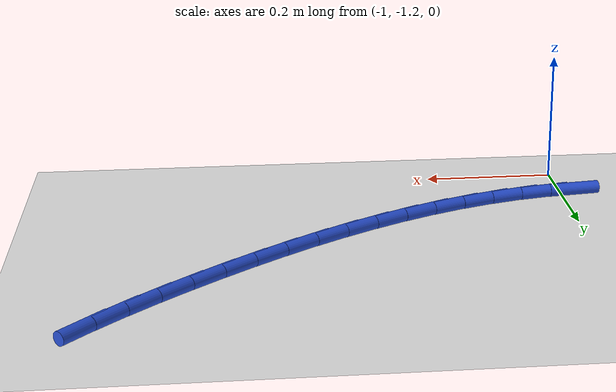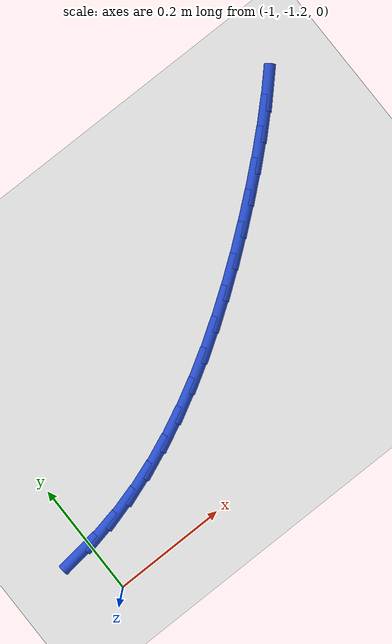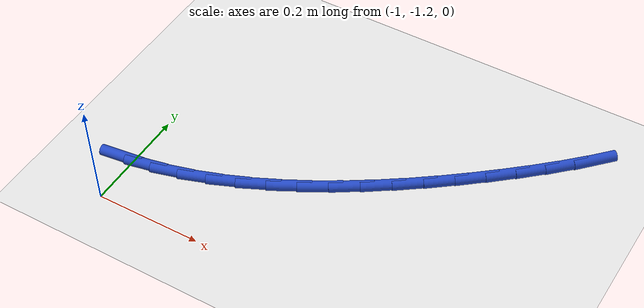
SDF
<sdf version="1.6">
 <world name="default">
  <model name="ground_plane">
   <static>1</static>
   <link name="link">
    <collision name="collision">
     <geometry><plane><normal>0 0 1</normal><size>100 100</size></plane></geometry>
     <surface><friction><ode><mu>100</mu><mu2>50</mu2></ode></friction></surface>
    </collision>
    <visual name="visual">
     <cast_shadows>0</cast_shadows>
     <geometry><plane><normal>0 0 1</normal><size>100 100</size></plane></geometry>
     <material>
      <script><uri>file://media/materials/scripts/gazebo.material</uri><name>Gazebo/WhiteGlow</name></script>
     </material>
    </visual>
   </link>
  </model>
  <model name="line">
   <link name="link_99">
    <pose>-1.0193923580620052 -1.1120422247886856 0.01 0 1.57 0.12185192751938952</pose>
    <collision name="collision">
     <geometry><cylinder><radius>0.01</radius><length>0.08</length></cylinder></geometry>
    </collision>
    <visual name="visual">
     <material>
      <script><name>Gazebo/Blue</name><uri>file://media/materials/scripts/gazebo.material</uri></script>
     </material>
     <geometry><cylinder><radius>0.01</radius><length>0.08</length></cylinder></geometry>
    </visual>
   </link>
   <link name="link_100">
    <pose>-0.9702314001675271 -1.1060220421006384 0.01 0 1.57 0.20117231028450341</pose>
    <collision name="collision">
     <geometry><cylinder><radius>0.01</radius><length>0.08</length></cylinder></geometry>
    </collision>
    <visual name="visual">
     <material>
      <script><name>Gazebo/Blue</name><uri>file://media/materials/scripts/gazebo.material</uri></script>
     </material>
     <geometry><cylinder><radius>0.01</radius><length>0.08</length></cylinder></geometry>
    </visual>
   </link>
   <link name="link_101">
    <pose>-0.9211338512082835 -1.0960095392569171 0.01 0 1.57 0.2731175204792611</pose>
    <collision name="collision">
     <geometry><cylinder><radius>0.01</radius><length>0.08</length></cylinder></geometry>
    </collision>
    <visual name="visual">
     <material>
      <script><name>Gazebo/Blue</name><uri>file://media/materials/scripts/gazebo.material</uri></script>
     </material>
     <geometry><cylinder><radius>0.01</radius><length>0.08</length></cylinder></geometry>
    </visual>
   </link>
   <link name="link_102">
    <pose>-0.8721962196817976 -1.082301259488225 0.01 0 1.57 0.3379386375586854</pose>
    <collision name="collision">
     <geometry><cylinder><radius>0.01</radius><length>0.08</length></cylinder></geometry>
    </collision>
    <visual name="visual">
     <material>
      <script><name>Gazebo/Blue</name><uri>file://media/materials/scripts/gazebo.material</uri></script>
     </material>
     <geometry><cylinder><radius>0.01</radius><length>0.08</length></cylinder></geometry>
    </visual>
   </link>
   <link name="link_103">
    <pose>-0.8235150140855939 -1.0651937460252663 0.01 0 1.57 0.3960849572459098</pose>
    <collision name="collision">
     <geometry><cylinder><radius>0.01</radius><length>0.08</length></cylinder></geometry>
    </collision>
    <visual name="visual">
     <material>
      <script><name>Gazebo/Blue</name><uri>file://media/materials/scripts/gazebo.material</uri></script>
     </material>
     <geometry><cylinder><radius>0.01</radius><length>0.08</length></cylinder></geometry>
    </visual>
   </link>
   <link name="link_104">
    <pose>-0.7751867429171959 -1.0449835420987448 0.01 0 1.57 0.44810567930062567</pose>
    <collision name="collision">
     <geometry><cylinder><radius>0.01</radius><length>0.08</length></cylinder></geometry>
    </collision>
    <visual name="visual">
     <material>
      <script><name>Gazebo/Blue</name><uri>file://media/materials/scripts/gazebo.material</uri></script>
     </material>
     <geometry><cylinder><radius>0.01</radius><length>0.08</length></cylinder></geometry>
    </visual>
   </link>
   <link name="link_105">
    <pose>-0.727307914674127 -1.0219671909393635 0.01 0 1.57 0.4945802524023667</pose>
    <collision name="collision">
     <geometry><cylinder><radius>0.01</radius><length>0.08</length></cylinder></geometry>
    </collision>
    <visual name="visual">
     <material>
      <script><name>Gazebo/Blue</name><uri>file://media/materials/scripts/gazebo.material</uri></script>
     </material>
     <geometry><cylinder><radius>0.01</radius><length>0.08</length></cylinder></geometry>
    </visual>
   </link>
   <link name="link_106">
    <pose>-0.6799750378539111 -0.9964412357778261 0.01 0 1.57 0.5360737581979104</pose>
    <collision name="collision">
     <geometry><cylinder><radius>0.01</radius><length>0.08</length></cylinder></geometry>
    </collision>
    <visual name="visual">
     <material>
      <script><name>Gazebo/Blue</name><uri>file://media/materials/scripts/gazebo.material</uri></script>
     </material>
     <geometry><cylinder><radius>0.01</radius><length>0.08</length></cylinder></geometry>
    </visual>
   </link>
   <link name="link_107">
    <pose>-0.633284620954071 -0.9687022198448361 0.01 0 1.57 0.5731111504407564</pose>
    <collision name="collision">
     <geometry><cylinder><radius>0.01</radius><length>0.08</length></cylinder></geometry>
    </collision>
    <visual name="visual">
     <material>
      <script><name>Gazebo/Blue</name><uri>file://media/materials/scripts/gazebo.material</uri></script>
     </material>
     <geometry><cylinder><radius>0.01</radius><length>0.08</length></cylinder></geometry>
    </visual>
   </link>
   <link name="link_108">
    <pose>-0.5873331724721315 -0.9390466863710973 0.01 0 1.57 0.6061643236891827</pose>
    <collision name="collision">
     <geometry><cylinder><radius>0.01</radius><length>0.08</length></cylinder></geometry>
    </collision>
    <visual name="visual">
     <material>
      <script><name>Gazebo/Blue</name><uri>file://media/materials/scripts/gazebo.material</uri></script>
     </material>
     <geometry><cylinder><radius>0.01</radius><length>0.08</length></cylinder></geometry>
    </visual>
   </link>
   <link name="link_109">
    <pose>-0.5422172009056161 -0.9077711785873137 0.01 0 1.57 0.6356471875923966</pose>
    <collision name="collision">
     <geometry><cylinder><radius>0.01</radius><length>0.08</length></cylinder></geometry>
    </collision>
    <visual name="visual">
     <material>
      <script><name>Gazebo/Blue</name><uri>file://media/materials/scripts/gazebo.material</uri></script>
     </material>
     <geometry><cylinder><radius>0.01</radius><length>0.08</length></cylinder></geometry>
    </visual>
   </link>
   <link name="link_110">
    <pose>-0.4980332147520472 -0.8751722397241878 0.01 0 1.57 0.6619152621798852</pose>
    <collision name="collision">
     <geometry><cylinder><radius>0.01</radius><length>0.08</length></cylinder></geometry>
    </collision>
    <visual name="visual">
     <material>
      <script><name>Gazebo/Blue</name><uri>file://media/materials/scripts/gazebo.material</uri></script>
     </material>
     <geometry><cylinder><radius>0.01</radius><length>0.08</length></cylinder></geometry>
    </visual>
   </link>
   <link name="link_111">
    <pose>-0.45487772250895014 -0.8415464130124244 0.01 0 1.57 0.6853742022299083</pose>
    <collision name="collision">
     <geometry><cylinder><radius>0.01</radius><length>0.08</length></cylinder></geometry>
    </collision>
    <visual name="visual">
     <material>
      <script><name>Gazebo/Blue</name><uri>file://media/materials/scripts/gazebo.material</uri></script>
     </material>
     <geometry><cylinder><radius>0.01</radius><length>0.08</length></cylinder></geometry>
    </visual>
   </link>
   <link name="link_112">
    <pose>-0.41284812224515915 -0.8071834812820196 0.01 0 1.57 0.7092823680113365</pose>
    <collision name="collision">
     <geometry><cylinder><radius>0.01</radius><length>0.08</length></cylinder></geometry>
    </collision>
    <visual name="visual">
     <material>
      <script><name>Gazebo/Blue</name><uri>file://media/materials/scripts/gazebo.material</uri></script>
     </material>
     <geometry><cylinder><radius>0.01</radius><length>0.08</length></cylinder></geometry>
    </visual>
   </link>
   <link name="link_113">
    <pose>-0.3720670017693938 -0.7721817950031769 0.01 0 1.57 0.7371775858594235</pose>
    <collision name="collision">
     <geometry><cylinder><radius>0.01</radius><length>0.08</length></cylinder></geometry>
    </collision>
    <visual name="visual">
     <material>
      <script><name>Gazebo/Blue</name><uri>file://media/materials/scripts/gazebo.material</uri></script>
     </material>
     <geometry><cylinder><radius>0.01</radius><length>0.08</length></cylinder></geometry>
    </visual>
   </link>
   <link name="link_114">
    <pose>-0.3326850852602932 -0.7364258790284306 0.01 0 1.57 0.769370637412331</pose>
    <collision name="collision">
     <geometry><cylinder><radius>0.01</radius><length>0.08</length></cylinder></geometry>
    </collision>
    <visual name="visual">
     <material>
      <script><name>Gazebo/Blue</name><uri>file://media/materials/scripts/gazebo.material</uri></script>
     </material>
     <geometry><cylinder><radius>0.01</radius><length>0.08</length></cylinder></geometry>
    </visual>
   </link>
   <link name="link_115">
    <pose>-0.29485457805563564 -0.6997890019690617 0.01 0 1.57 0.8059679456687142</pose>
    <collision name="collision">
     <geometry><cylinder><radius>0.01</radius><length>0.08</length></cylinder></geometry>
    </collision>
    <visual name="visual">
     <material>
      <script><name>Gazebo/Blue</name><uri>file://media/materials/scripts/gazebo.material</uri></script>
     </material>
     <geometry><cylinder><radius>0.01</radius><length>0.08</length></cylinder></geometry>
    </visual>
   </link>
  </model>
 </world>
</sdf>
